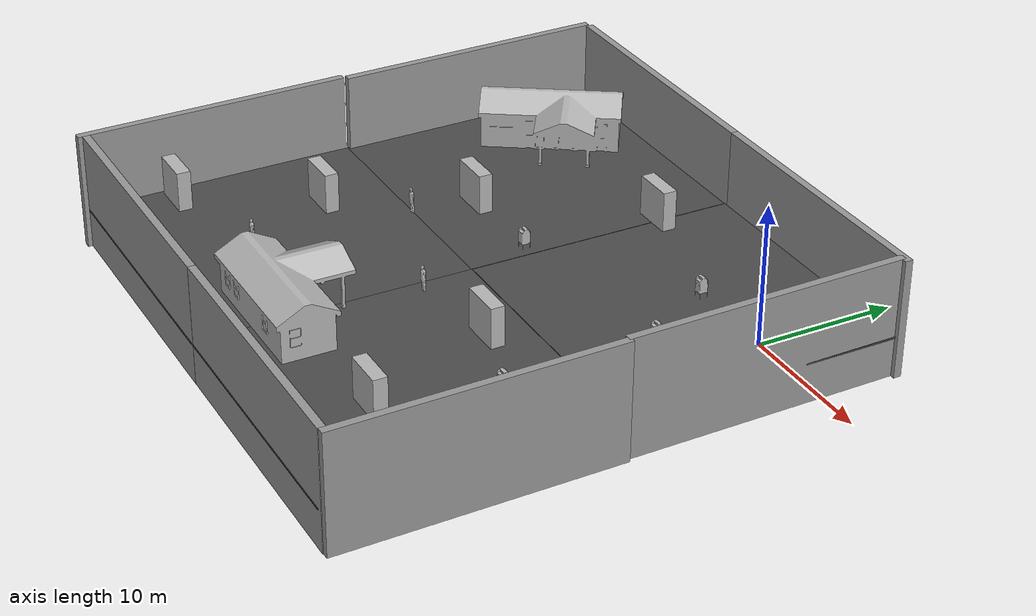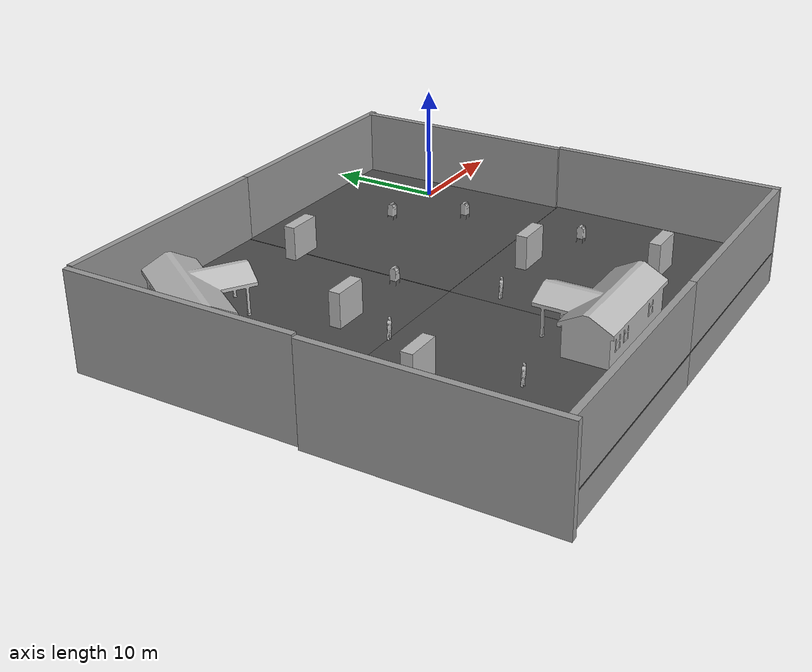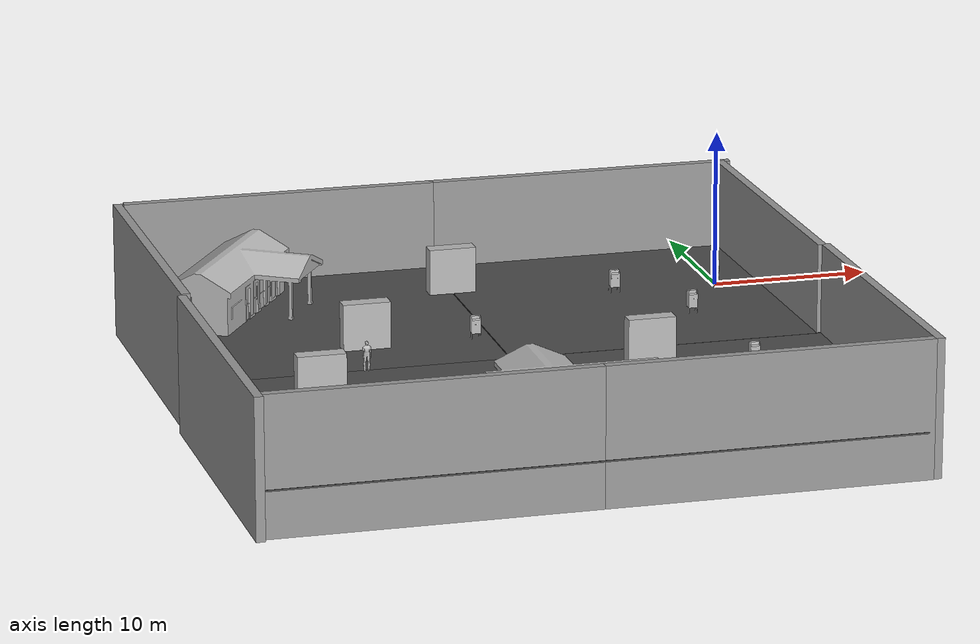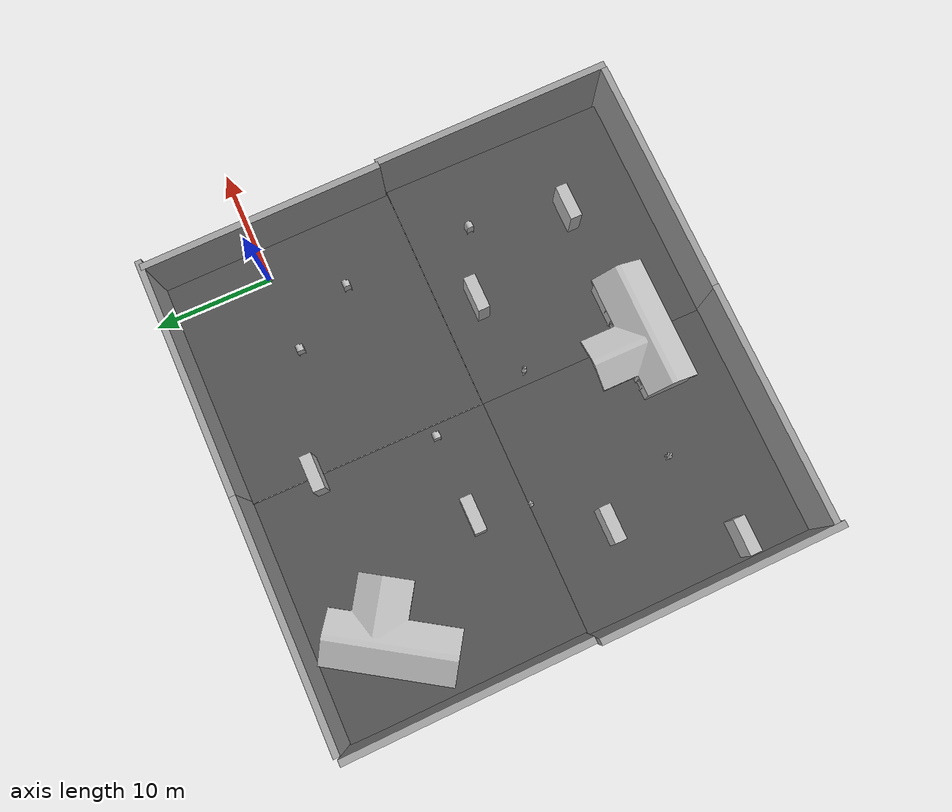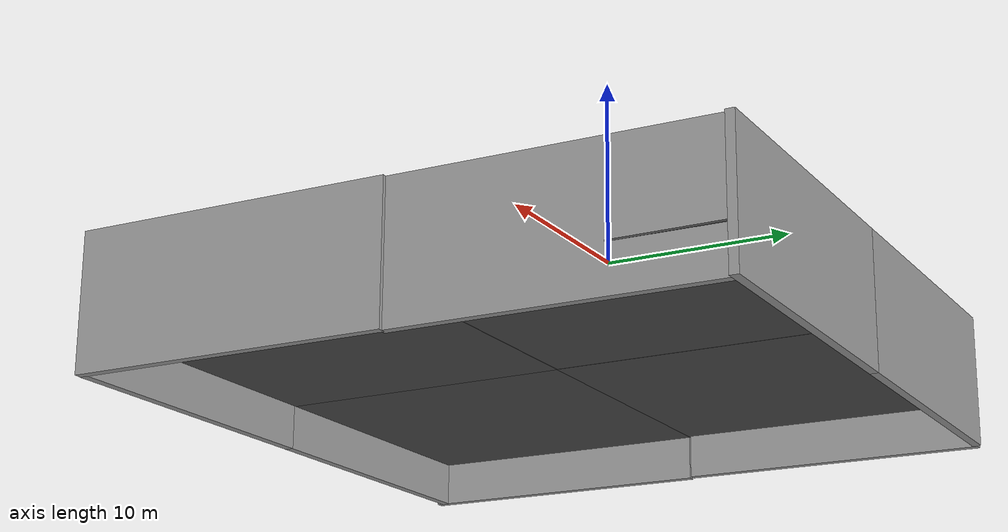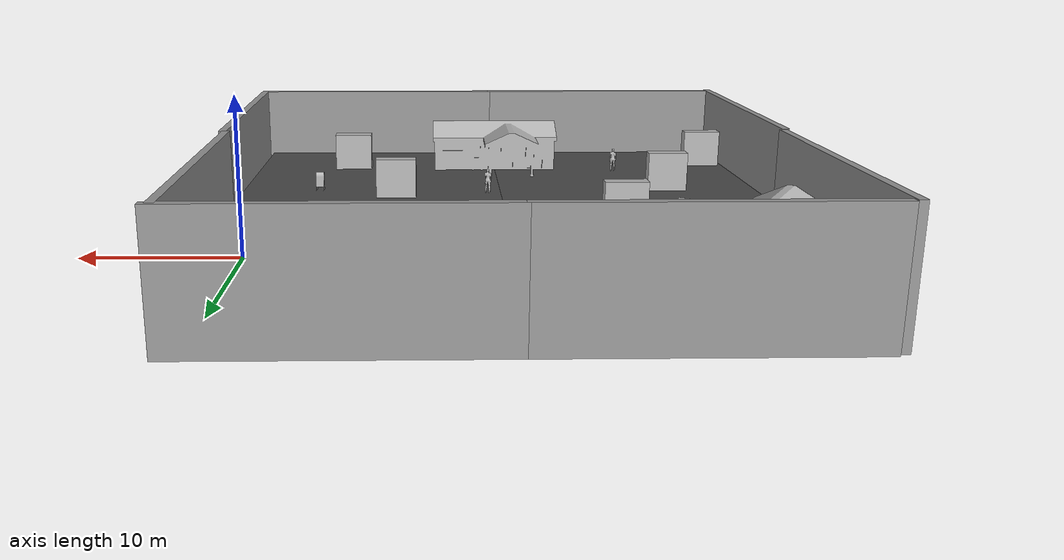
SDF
<?xml version='1.0'?>
<sdf version='1.6'>
  <model name='mw_5'>
    <link name='link'>
      <pose frame=''>0 0 0 0 -0 0</pose>
      <inertial>
        <pose frame=''>0 -0.1 0.95 0 -0 0</pose>
        <mass>80</mass>
        <inertia>
          <ixx>24.88</ixx>
          <ixy>0</ixy>
          <ixz>0</ixz>
          <iyy>25.73</iyy>
          <iyz>0</iyz>
          <izz>2.48</izz>
        </inertia>
      </inertial>
      <self_collide>0</self_collide>
      <kinematic>0</kinematic>
      <visual name='visual'>
        <pose frame=''>0 0 0.02 0.04 -0 0</pose>
        <geometry>
          <mesh>
            <uri>model://person_standing/meshes/standing.dae</uri>
          </mesh>
        </geometry>
        <cast_shadows>1</cast_shadows>
        <transparency>0</transparency>
      </visual>
      <collision name='bottom'>
        <laser_retro>0</laser_retro>
        <max_contacts>10</max_contacts>
        <pose frame=''>0 -0.1 0.01 0 -0 0</pose>
        <geometry>
          <box>
            <size>0.5 0.35 0.02</size>
          </box>
        </geometry>
        <surface>
          <friction>
            <ode>
              <mu>1</mu>
              <mu2>1</mu2>
              <fdir1>0 0 0</fdir1>
              <slip1>0</slip1>
              <slip2>0</slip2>
            </ode>
            <torsional>
              <coefficient>1</coefficient>
              <patch_radius>0</patch_radius>
              <surface_radius>0</surface_radius>
              <use_patch_radius>1</use_patch_radius>
              <ode>
                <slip>0</slip>
              </ode>
            </torsional>
          </friction>
          <bounce>
            <restitution_coefficient>0</restitution_coefficient>
            <threshold>1e+06</threshold>
          </bounce>
          <contact>
            <collide_without_contact>0</collide_without_contact>
            <collide_without_contact_bitmask>1</collide_without_contact_bitmask>
            <collide_bitmask>1</collide_bitmask>
            <ode>
              <soft_cfm>0</soft_cfm>
              <soft_erp>0.2</soft_erp>
              <kp>1e+13</kp>
              <kd>1</kd>
              <max_vel>0.01</max_vel>
              <min_depth>0</min_depth>
            </ode>
            <bullet>
              <split_impulse>1</split_impulse>
              <split_impulse_penetration_threshold>-0.01</split_impulse_penetration_threshold>
              <soft_cfm>0</soft_cfm>
              <soft_erp>0.2</soft_erp>
              <kp>1e+13</kp>
              <kd>1</kd>
            </bullet>
          </contact>
        </surface>
      </collision>
      <collision name='person'>
        <laser_retro>0</laser_retro>
        <max_contacts>10</max_contacts>
        <pose frame=''>0 0 0.02 0.04 -0 0</pose>
        <geometry>
          <mesh>
            <uri>/home/asl/.gazebo/models/person_standing/meshes/standing.dae</uri>
          </mesh>
        </geometry>
        <surface>
          <friction>
            <ode>
              <mu>1</mu>
              <mu2>1</mu2>
              <fdir1>0 0 0</fdir1>
              <slip1>0</slip1>
              <slip2>0</slip2>
            </ode>
            <torsional>
              <coefficient>1</coefficient>
              <patch_radius>0</patch_radius>
              <surface_radius>0</surface_radius>
              <use_patch_radius>1</use_patch_radius>
              <ode>
                <slip>0</slip>
              </ode>
            </torsional>
          </friction>
          <bounce>
            <restitution_coefficient>0</restitution_coefficient>
            <threshold>1e+06</threshold>
          </bounce>
          <contact>
            <collide_without_contact>0</collide_without_contact>
            <collide_without_contact_bitmask>1</collide_without_contact_bitmask>
            <collide_bitmask>1</collide_bitmask>
            <ode>
              <soft_cfm>0</soft_cfm>
              <soft_erp>0.2</soft_erp>
              <kp>1e+13</kp>
              <kd>1</kd>
              <max_vel>0.01</max_vel>
              <min_depth>0</min_depth>
            </ode>
            <bullet>
              <split_impulse>1</split_impulse>
              <split_impulse_penetration_threshold>-0.01</split_impulse_penetration_threshold>
              <soft_cfm>0</soft_cfm>
              <soft_erp>0.2</soft_erp>
              <kp>1e+13</kp>
              <kd>1</kd>
            </bullet>
          </contact>
        </surface>
      </collision>
    </link>
    <link name='link_clone'>
      <pose frame=''>-26.7598 -23.4379 4.8e-05 -1e-06 1e-06 0.000434</pose>
      <inertial>
        <pose frame=''>0 -0.1 0.95 0 -0 0</pose>
        <mass>80</mass>
        <inertia>
          <ixx>24.88</ixx>
          <ixy>0</ixy>
          <ixz>0</ixz>
          <iyy>25.73</iyy>
          <iyz>0</iyz>
          <izz>2.48</izz>
        </inertia>
      </inertial>
      <self_collide>0</self_collide>
      <kinematic>0</kinematic>
      <visual name='visual'>
        <pose frame=''>0 0 0.02 0.04 -0 0</pose>
        <geometry>
          <mesh>
            <uri>model://person_standing/meshes/standing.dae</uri>
          </mesh>
        </geometry>
        <cast_shadows>1</cast_shadows>
        <transparency>0</transparency>
        <material>
          <shader type='pixel'/>
        </material>
      </visual>
      <collision name='person'>
        <laser_retro>0</laser_retro>
        <max_contacts>10</max_contacts>
        <pose frame=''>0 0 0.02 0.04 -0 0</pose>
        <geometry>
          <mesh>
            <uri>/home/asl/.gazebo/models/person_standing/meshes/standing.dae</uri>
          </mesh>
        </geometry>
        <surface>
          <friction>
            <ode>
              <mu>1</mu>
              <mu2>1</mu2>
              <fdir1>0 0 0</fdir1>
              <slip1>0</slip1>
              <slip2>0</slip2>
            </ode>
            <torsional>
              <coefficient>1</coefficient>
              <patch_radius>0</patch_radius>
              <surface_radius>0</surface_radius>
              <use_patch_radius>1</use_patch_radius>
              <ode>
                <slip>0</slip>
              </ode>
            </torsional>
          </friction>
          <bounce>
            <restitution_coefficient>0</restitution_coefficient>
            <threshold>1e+06</threshold>
          </bounce>
          <contact>
            <collide_without_contact>0</collide_without_contact>
            <collide_without_contact_bitmask>1</collide_without_contact_bitmask>
            <collide_bitmask>1</collide_bitmask>
            <ode>
              <soft_cfm>0</soft_cfm>
              <soft_erp>0.2</soft_erp>
              <kp>1e+13</kp>
              <kd>1</kd>
              <max_vel>0.01</max_vel>
              <min_depth>0</min_depth>
            </ode>
            <bullet>
              <split_impulse>1</split_impulse>
              <split_impulse_penetration_threshold>-0.01</split_impulse_penetration_threshold>
              <soft_cfm>0</soft_cfm>
              <soft_erp>0.2</soft_erp>
              <kp>1e+13</kp>
              <kd>1</kd>
            </bullet>
          </contact>
        </surface>
      </collision>
      <collision name='bottom'>
        <laser_retro>0</laser_retro>
        <max_contacts>10</max_contacts>
        <pose frame=''>0 -0.1 0.01 0 -0 0</pose>
        <geometry>
          <box>
            <size>0.5 0.35 0.02</size>
          </box>
        </geometry>
        <surface>
          <friction>
            <ode>
              <mu>1</mu>
              <mu2>1</mu2>
              <fdir1>0 0 0</fdir1>
              <slip1>0</slip1>
              <slip2>0</slip2>
            </ode>
            <torsional>
              <coefficient>1</coefficient>
              <patch_radius>0</patch_radius>
              <surface_radius>0</surface_radius>
              <use_patch_radius>1</use_patch_radius>
              <ode>
                <slip>0</slip>
              </ode>
            </torsional>
          </friction>
          <bounce>
            <restitution_coefficient>0</restitution_coefficient>
            <threshold>1e+06</threshold>
          </bounce>
          <contact>
            <collide_without_contact>0</collide_without_contact>
            <collide_without_contact_bitmask>1</collide_without_contact_bitmask>
            <collide_bitmask>1</collide_bitmask>
            <ode>
              <soft_cfm>0</soft_cfm>
              <soft_erp>0.2</soft_erp>
              <kp>1e+13</kp>
              <kd>1</kd>
              <max_vel>0.01</max_vel>
              <min_depth>0</min_depth>
            </ode>
            <bullet>
              <split_impulse>1</split_impulse>
              <split_impulse_penetration_threshold>-0.01</split_impulse_penetration_threshold>
              <soft_cfm>0</soft_cfm>
              <soft_erp>0.2</soft_erp>
              <kp>1e+13</kp>
              <kd>1</kd>
            </bullet>
          </contact>
        </surface>
      </collision>
    </link>
    <link name='link_clone_0'>
      <pose frame=''>-15.7631 -15.8646 2.9e-05 -1e-06 1e-06 0.000434</pose>
      <inertial>
        <pose frame=''>0 -0.1 0.95 0 -0 0</pose>
        <mass>80</mass>
        <inertia>
          <ixx>24.88</ixx>
          <ixy>0</ixy>
          <ixz>0</ixz>
          <iyy>25.73</iyy>
          <iyz>0</iyz>
          <izz>2.48</izz>
        </inertia>
      </inertial>
      <self_collide>0</self_collide>
      <kinematic>0</kinematic>
      <visual name='visual'>
        <pose frame=''>0 0 0.02 0.04 -0 0</pose>
        <geometry>
          <mesh>
            <uri>model://person_standing/meshes/standing.dae</uri>
          </mesh>
        </geometry>
        <cast_shadows>1</cast_shadows>
        <transparency>0</transparency>
        <material>
          <shader type='pixel'/>
        </material>
      </visual>
      <collision name='person'>
        <laser_retro>0</laser_retro>
        <max_contacts>10</max_contacts>
        <pose frame=''>0 0 0.02 0.04 -0 0</pose>
        <geometry>
          <mesh>
            <uri>/home/asl/.gazebo/models/person_standing/meshes/standing.dae</uri>
          </mesh>
        </geometry>
        <surface>
          <friction>
            <ode>
              <mu>1</mu>
              <mu2>1</mu2>
              <fdir1>0 0 0</fdir1>
              <slip1>0</slip1>
              <slip2>0</slip2>
            </ode>
            <torsional>
              <coefficient>1</coefficient>
              <patch_radius>0</patch_radius>
              <surface_radius>0</surface_radius>
              <use_patch_radius>1</use_patch_radius>
              <ode>
                <slip>0</slip>
              </ode>
            </torsional>
          </friction>
          <bounce>
            <restitution_coefficient>0</restitution_coefficient>
            <threshold>1e+06</threshold>
          </bounce>
          <contact>
            <collide_without_contact>0</collide_without_contact>
            <collide_without_contact_bitmask>1</collide_without_contact_bitmask>
            <collide_bitmask>1</collide_bitmask>
            <ode>
              <soft_cfm>0</soft_cfm>
              <soft_erp>0.2</soft_erp>
              <kp>1e+13</kp>
              <kd>1</kd>
              <max_vel>0.01</max_vel>
              <min_depth>0</min_depth>
            </ode>
            <bullet>
              <split_impulse>1</split_impulse>
              <split_impulse_penetration_threshold>-0.01</split_impulse_penetration_threshold>
              <soft_cfm>0</soft_cfm>
              <soft_erp>0.2</soft_erp>
              <kp>1e+13</kp>
              <kd>1</kd>
            </bullet>
          </contact>
        </surface>
      </collision>
      <collision name='bottom'>
        <laser_retro>0</laser_retro>
        <max_contacts>10</max_contacts>
        <pose frame=''>0 -0.1 0.01 0 -0 0</pose>
        <geometry>
          <box>
            <size>0.5 0.35 0.02</size>
          </box>
        </geometry>
        <surface>
          <friction>
            <ode>
              <mu>1</mu>
              <mu2>1</mu2>
              <fdir1>0 0 0</fdir1>
              <slip1>0</slip1>
              <slip2>0</slip2>
            </ode>
            <torsional>
              <coefficient>1</coefficient>
              <patch_radius>0</patch_radius>
              <surface_radius>0</surface_radius>
              <use_patch_radius>1</use_patch_radius>
              <ode>
                <slip>0</slip>
              </ode>
            </torsional>
          </friction>
          <bounce>
            <restitution_coefficient>0</restitution_coefficient>
            <threshold>1e+06</threshold>
          </bounce>
          <contact>
            <collide_without_contact>0</collide_without_contact>
            <collide_without_contact_bitmask>1</collide_without_contact_bitmask>
            <collide_bitmask>1</collide_bitmask>
            <ode>
              <soft_cfm>0</soft_cfm>
              <soft_erp>0.2</soft_erp>
              <kp>1e+13</kp>
              <kd>1</kd>
              <max_vel>0.01</max_vel>
              <min_depth>0</min_depth>
            </ode>
            <bullet>
              <split_impulse>1</split_impulse>
              <split_impulse_penetration_threshold>-0.01</split_impulse_penetration_threshold>
              <soft_cfm>0</soft_cfm>
              <soft_erp>0.2</soft_erp>
              <kp>1e+13</kp>
              <kd>1</kd>
            </bullet>
          </contact>
        </surface>
      </collision>
    </link>
    <link name='link_clone_1'>
      <pose frame=''>-25.7648 -11.869 4e-05 -1e-06 1e-06 0.000434</pose>
      <inertial>
        <pose frame=''>0 -0.1 0.95 0 -0 0</pose>
        <mass>80</mass>
        <inertia>
          <ixx>24.88</ixx>
          <ixy>0</ixy>
          <ixz>0</ixz>
          <iyy>25.73</iyy>
          <iyz>0</iyz>
          <izz>2.48</izz>
        </inertia>
      </inertial>
      <self_collide>0</self_collide>
      <kinematic>0</kinematic>
      <visual name='visual'>
        <pose frame=''>0 0 0.02 0.04 -0 0</pose>
        <geometry>
          <mesh>
            <uri>model://person_standing/meshes/standing.dae</uri>
          </mesh>
        </geometry>
        <cast_shadows>1</cast_shadows>
        <transparency>0</transparency>
        <material>
          <shader type='pixel'/>
        </material>
      </visual>
      <collision name='person'>
        <laser_retro>0</laser_retro>
        <max_contacts>10</max_contacts>
        <pose frame=''>0 0 0.02 0.04 -0 0</pose>
        <geometry>
          <mesh>
            <uri>/home/asl/.gazebo/models/person_standing/meshes/standing.dae</uri>
          </mesh>
        </geometry>
        <surface>
          <friction>
            <ode>
              <mu>1</mu>
              <mu2>1</mu2>
              <fdir1>0 0 0</fdir1>
              <slip1>0</slip1>
              <slip2>0</slip2>
            </ode>
            <torsional>
              <coefficient>1</coefficient>
              <patch_radius>0</patch_radius>
              <surface_radius>0</surface_radius>
              <use_patch_radius>1</use_patch_radius>
              <ode>
                <slip>0</slip>
              </ode>
            </torsional>
          </friction>
          <bounce>
            <restitution_coefficient>0</restitution_coefficient>
            <threshold>1e+06</threshold>
          </bounce>
          <contact>
            <collide_without_contact>0</collide_without_contact>
            <collide_without_contact_bitmask>1</collide_without_contact_bitmask>
            <collide_bitmask>1</collide_bitmask>
            <ode>
              <soft_cfm>0</soft_cfm>
              <soft_erp>0.2</soft_erp>
              <kp>1e+13</kp>
              <kd>1</kd>
              <max_vel>0.01</max_vel>
              <min_depth>0</min_depth>
            </ode>
            <bullet>
              <split_impulse>1</split_impulse>
              <split_impulse_penetration_threshold>-0.01</split_impulse_penetration_threshold>
              <soft_cfm>0</soft_cfm>
              <soft_erp>0.2</soft_erp>
              <kp>1e+13</kp>
              <kd>1</kd>
            </bullet>
          </contact>
        </surface>
      </collision>
      <collision name='bottom'>
        <laser_retro>0</laser_retro>
        <max_contacts>10</max_contacts>
        <pose frame=''>0 -0.1 0.01 0 -0 0</pose>
        <geometry>
          <box>
            <size>0.5 0.35 0.02</size>
          </box>
        </geometry>
        <surface>
          <friction>
            <ode>
              <mu>1</mu>
              <mu2>1</mu2>
              <fdir1>0 0 0</fdir1>
              <slip1>0</slip1>
              <slip2>0</slip2>
            </ode>
            <torsional>
              <coefficient>1</coefficient>
              <patch_radius>0</patch_radius>
              <surface_radius>0</surface_radius>
              <use_patch_radius>1</use_patch_radius>
              <ode>
                <slip>0</slip>
              </ode>
            </torsional>
          </friction>
          <bounce>
            <restitution_coefficient>0</restitution_coefficient>
            <threshold>1e+06</threshold>
          </bounce>
          <contact>
            <collide_without_contact>0</collide_without_contact>
            <collide_without_contact_bitmask>1</collide_without_contact_bitmask>
            <collide_bitmask>1</collide_bitmask>
            <ode>
              <soft_cfm>0</soft_cfm>
              <soft_erp>0.2</soft_erp>
              <kp>1e+13</kp>
              <kd>1</kd>
              <max_vel>0.01</max_vel>
              <min_depth>0</min_depth>
            </ode>
            <bullet>
              <split_impulse>1</split_impulse>
              <split_impulse_penetration_threshold>-0.01</split_impulse_penetration_threshold>
              <soft_cfm>0</soft_cfm>
              <soft_erp>0.2</soft_erp>
              <kp>1e+13</kp>
              <kd>1</kd>
            </bullet>
          </contact>
        </surface>
      </collision>
    </link>
    <model name='asphalt_plane'>
      <static>1</static>
      <link name='link'>
        <collision name='collision'>
          <geometry>
            <box>
              <size>20 20 0.1</size>
            </box>
          </geometry>
          <max_contacts>10</max_contacts>
          <surface>
            <contact>
              <ode/>
            </contact>
            <bounce/>
            <friction>
              <torsional>
                <ode/>
              </torsional>
              <ode/>
            </friction>
          </surface>
        </collision>
        <visual name='visual'>
          <cast_shadows>0</cast_shadows>
          <geometry>
            <box>
              <size>20 20 0.1</size>
            </box>
          </geometry>
          <material>
            <script>
              <uri>model://asphalt_plane/materials/scripts</uri>
              <uri>model://asphalt_plane/materials/textures</uri>
              <name>vrc/asphalt</name>
            </script>
          </material>
        </visual>
        <self_collide>0</self_collide>
        <kinematic>0</kinematic>
        <gravity>1</gravity>
      </link>
      <pose frame=''>-6.71407 -1.82606 1e-05 0 -0 0</pose>
    </model>
    <model name='asphalt_plane_0'>
      <static>1</static>
      <link name='link'>
        <collision name='collision'>
          <geometry>
            <box>
              <size>20 20 0.1</size>
            </box>
          </geometry>
          <max_contacts>10</max_contacts>
          <surface>
            <contact>
              <ode/>
            </contact>
            <bounce/>
            <friction>
              <torsional>
                <ode/>
              </torsional>
              <ode/>
            </friction>
          </surface>
        </collision>
        <visual name='visual'>
          <cast_shadows>0</cast_shadows>
          <geometry>
            <box>
              <size>20 20 0.1</size>
            </box>
          </geometry>
          <material>
            <script>
              <uri>model://asphalt_plane/materials/scripts</uri>
              <uri>model://asphalt_plane/materials/textures</uri>
              <name>vrc/asphalt</name>
            </script>
          </material>
        </visual>
        <self_collide>0</self_collide>
        <kinematic>0</kinematic>
        <gravity>1</gravity>
      </link>
      <pose frame=''>-6.82262 -21.8542 2.1e-05 0 -0 0</pose>
    </model>
    <model name='asphalt_plane_1'>
      <static>1</static>
      <link name='link'>
        <collision name='collision'>
          <geometry>
            <box>
              <size>20 20 0.1</size>
            </box>
          </geometry>
          <max_contacts>10</max_contacts>
          <surface>
            <contact>
              <ode/>
            </contact>
            <bounce/>
            <friction>
              <torsional>
                <ode/>
              </torsional>
              <ode/>
            </friction>
          </surface>
        </collision>
        <visual name='visual'>
          <cast_shadows>0</cast_shadows>
          <geometry>
            <box>
              <size>20 20 0.1</size>
            </box>
          </geometry>
          <material>
            <script>
              <uri>model://asphalt_plane/materials/scripts</uri>
              <uri>model://asphalt_plane/materials/textures</uri>
              <name>vrc/asphalt</name>
            </script>
          </material>
        </visual>
        <self_collide>0</self_collide>
        <kinematic>0</kinematic>
        <gravity>1</gravity>
      </link>
      <pose frame=''>-26.7692 -1.8694 3.6e-05 0 -0 0</pose>
    </model>
    <model name='asphalt_plane_2'>
      <static>1</static>
      <link name='link'>
        <collision name='collision'>
          <geometry>
            <box>
              <size>20 20 0.1</size>
            </box>
          </geometry>
          <max_contacts>10</max_contacts>
          <surface>
            <contact>
              <ode/>
            </contact>
            <bounce/>
            <friction>
              <torsional>
                <ode/>
              </torsional>
              <ode/>
            </friction>
          </surface>
        </collision>
        <visual name='visual'>
          <cast_shadows>0</cast_shadows>
          <geometry>
            <box>
              <size>20 20 0.1</size>
            </box>
          </geometry>
          <material>
            <script>
              <uri>model://asphalt_plane/materials/scripts</uri>
              <uri>model://asphalt_plane/materials/textures</uri>
              <name>vrc/asphalt</name>
            </script>
          </material>
        </visual>
        <self_collide>0</self_collide>
        <kinematic>0</kinematic>
        <gravity>1</gravity>
      </link>
      <pose frame=''>-26.7605 -21.8694 4.7e-05 0 -0 0</pose>
    </model>
    <model name='brick_box_3x1x3'>
      <static>1</static>
      <link name='chassis'>
        <pose frame=''>0 0 1.5 0 -0 0</pose>
        <collision name='collision'>
          <geometry>
            <box>
              <size>3 1 3</size>
            </box>
          </geometry>
          <max_contacts>10</max_contacts>
          <surface>
            <contact>
              <ode/>
            </contact>
            <bounce/>
            <friction>
              <torsional>
                <ode/>
              </torsional>
              <ode/>
            </friction>
          </surface>
        </collision>
        <visual name='visual'>
          <geometry>
            <mesh>
              <uri>model://brick_box_3x1x3/meshes/simple_box.dae</uri>
              <scale>3 1 3</scale>
            </mesh>
          </geometry>
          <material>
            <script>
              <uri>model://brick_box_3x1x3/materials/scripts</uri>
              <uri>model://brick_box_3x1x3/materials/textures</uri>
              <name>BrickBox/Diffuse</name>
            </script>
          </material>
        </visual>
        <self_collide>0</self_collide>
        <kinematic>0</kinematic>
        <gravity>1</gravity>
      </link>
      <pose frame=''>-16.7712 2.65121 2e-05 0 -0 0</pose>
    </model>
    <model name='brick_box_3x1x3_0'>
      <static>1</static>
      <link name='chassis'>
        <pose frame=''>0 0 1.5 0 -0 0</pose>
        <collision name='collision'>
          <geometry>
            <box>
              <size>3 1 3</size>
            </box>
          </geometry>
          <max_contacts>10</max_contacts>
          <surface>
            <contact>
              <ode/>
            </contact>
            <bounce/>
            <friction>
              <torsional>
                <ode/>
              </torsional>
              <ode/>
            </friction>
          </surface>
        </collision>
        <visual name='visual'>
          <geometry>
            <mesh>
              <uri>model://brick_box_3x1x3/meshes/simple_box.dae</uri>
              <scale>3 1 3</scale>
            </mesh>
          </geometry>
          <material>
            <script>
              <uri>model://brick_box_3x1x3/materials/scripts</uri>
              <uri>model://brick_box_3x1x3/materials/textures</uri>
              <name>BrickBox/Diffuse</name>
            </script>
          </material>
        </visual>
        <self_collide>0</self_collide>
        <kinematic>0</kinematic>
        <gravity>1</gravity>
      </link>
      <pose frame=''>-4.7592 -24.8598 2e-05 0 -0 0</pose>
    </model>
    <model name='brick_box_3x1x3_clone'>
      <static>1</static>
      <link name='chassis'>
        <pose frame=''>0 0 1.5 0 -0 0</pose>
        <collision name='collision'>
          <geometry>
            <box>
              <size>3 1 3</size>
            </box>
          </geometry>
          <max_contacts>10</max_contacts>
          <surface>
            <contact>
              <ode/>
            </contact>
            <bounce/>
            <friction>
              <torsional>
                <ode/>
              </torsional>
              <ode/>
            </friction>
          </surface>
        </collision>
        <visual name='visual'>
          <geometry>
            <mesh>
              <uri>model://brick_box_3x1x3/meshes/simple_box.dae</uri>
              <scale>3 1 3</scale>
            </mesh>
          </geometry>
          <material>
            <script>
              <uri>model://brick_box_3x1x3/materials/scripts</uri>
              <uri>model://brick_box_3x1x3/materials/textures</uri>
              <name>BrickBox/Diffuse</name>
            </script>
          </material>
        </visual>
        <self_collide>0</self_collide>
        <kinematic>0</kinematic>
        <gravity>1</gravity>
      </link>
      <pose frame=''>-29.7627 -16.8707 6.8e-05 -1e-06 1e-06 0.000434</pose>
    </model>
    <model name='brick_box_3x1x3_clone_clone'>
      <static>1</static>
      <link name='chassis'>
        <pose frame=''>0 0 1.5 0 -0 0</pose>
        <collision name='collision'>
          <geometry>
            <box>
              <size>3 1 3</size>
            </box>
          </geometry>
          <max_contacts>10</max_contacts>
          <surface>
            <contact>
              <ode/>
            </contact>
            <bounce/>
            <friction>
              <torsional>
                <ode/>
              </torsional>
              <ode/>
            </friction>
          </surface>
        </collision>
        <visual name='visual'>
          <geometry>
            <mesh>
              <uri>model://brick_box_3x1x3/meshes/simple_box.dae</uri>
              <scale>3 1 3</scale>
            </mesh>
          </geometry>
          <material>
            <script>
              <uri>model://brick_box_3x1x3/materials/scripts</uri>
              <uri>model://brick_box_3x1x3/materials/textures</uri>
              <name>BrickBox/Diffuse</name>
            </script>
          </material>
        </visual>
        <self_collide>0</self_collide>
        <kinematic>0</kinematic>
        <gravity>1</gravity>
      </link>
      <pose frame=''>-8.76355 -14.8616 8.8e-05 -2e-06 2e-06 0.000868</pose>
    </model>
    <model name='brick_box_3x1x3_clone_clone_0'>
      <static>1</static>
      <link name='chassis'>
        <pose frame=''>0 0 1.5 0 -0 0</pose>
        <collision name='collision'>
          <geometry>
            <box>
              <size>3 1 3</size>
            </box>
          </geometry>
          <max_contacts>10</max_contacts>
          <surface>
            <contact>
              <ode/>
            </contact>
            <bounce/>
            <friction>
              <torsional>
                <ode/>
              </torsional>
              <ode/>
            </friction>
          </surface>
        </collision>
        <visual name='visual'>
          <geometry>
            <mesh>
              <uri>model://brick_box_3x1x3/meshes/simple_box.dae</uri>
              <scale>3 1 3</scale>
            </mesh>
          </geometry>
          <material>
            <script>
              <uri>model://brick_box_3x1x3/materials/scripts</uri>
              <uri>model://brick_box_3x1x3/materials/textures</uri>
              <name>BrickBox/Diffuse</name>
            </script>
          </material>
        </visual>
        <self_collide>0</self_collide>
        <kinematic>0</kinematic>
        <gravity>1</gravity>
      </link>
      <pose frame=''>-34.7588 -25.8729 0.000128 -2e-06 2e-06 0.000868</pose>
    </model>
    <model name='brick_box_3x1x3_clone_clone_1'>
      <static>1</static>
      <link name='chassis'>
        <pose frame=''>0 0 1.5 0 -0 0</pose>
        <collision name='collision'>
          <geometry>
            <box>
              <size>3 1 3</size>
            </box>
          </geometry>
          <max_contacts>10</max_contacts>
          <surface>
            <contact>
              <ode/>
            </contact>
            <bounce/>
            <friction>
              <torsional>
                <ode/>
              </torsional>
              <ode/>
            </friction>
          </surface>
        </collision>
        <visual name='visual'>
          <geometry>
            <mesh>
              <uri>model://brick_box_3x1x3/meshes/simple_box.dae</uri>
              <scale>3 1 3</scale>
            </mesh>
          </geometry>
          <material>
            <script>
              <uri>model://brick_box_3x1x3/materials/scripts</uri>
              <uri>model://brick_box_3x1x3/materials/textures</uri>
              <name>BrickBox/Diffuse</name>
            </script>
          </material>
        </visual>
        <self_collide>0</self_collide>
        <kinematic>0</kinematic>
        <gravity>1</gravity>
      </link>
      <pose frame=''>-24.7668 -7.42377 0.000104 -2e-06 2e-06 0.000868</pose>
    </model>
    <model name='grey_wall_mw'>
      <link name='link'>
        <pose frame=''>-8.81665 -2.69351 1.4 0 -0 0</pose>
        <inertial>
          <inertia>
            <ixx>nan</ixx>
            <ixy>0</ixy>
            <ixz>0</ixz>
            <iyy>nan</iyy>
            <iyz>0</iyz>
            <izz>nan</izz>
          </inertia>
          <mass>0</mass>
          <pose frame=''>0 0 0 0 -0 0</pose>
        </inertial>
        <self_collide>0</self_collide>
        <kinematic>0</kinematic>
        <visual name='visual'>
          <cast_shadows>0</cast_shadows>
          <geometry>
            <box>
              <size>20.2056 0.556506 8.63552</size>
            </box>
          </geometry>
          <material>
            <script>
              <uri>model://grey_wall/materials/scripts</uri>
              <uri>model://grey_wall/materials/textures</uri>
              <name>vrc/grey_wall</name>
            </script>
            <ambient>1 1 1 1</ambient>
            <diffuse>1 1 1 1</diffuse>
            <specular>0 0 0 1</specular>
            <emissive>0 0 0 1</emissive>
          </material>
          <pose frame=''>0 0 0 0 -0 0</pose>
          <transparency>0</transparency>
        </visual>
        <collision name='collision'>
          <laser_retro>0</laser_retro>
          <max_contacts>10</max_contacts>
          <pose frame=''>0 0 0 0 -0 0</pose>
          <geometry>
            <box>
              <size>20.2056 0.556506 8.63552</size>
            </box>
          </geometry>
          <surface>
            <friction>
              <ode>
                <mu>1</mu>
                <mu2>1</mu2>
                <fdir1>0 0 0</fdir1>
                <slip1>0</slip1>
                <slip2>0</slip2>
              </ode>
              <torsional>
                <coefficient>1</coefficient>
                <patch_radius>0</patch_radius>
                <surface_radius>0</surface_radius>
                <use_patch_radius>1</use_patch_radius>
                <ode>
                  <slip>0</slip>
                </ode>
              </torsional>
            </friction>
            <bounce>
              <restitution_coefficient>0</restitution_coefficient>
              <threshold>1e+06</threshold>
            </bounce>
            <contact>
              <collide_without_contact>0</collide_without_contact>
              <collide_without_contact_bitmask>1</collide_without_contact_bitmask>
              <collide_bitmask>1</collide_bitmask>
              <ode>
                <soft_cfm>0</soft_cfm>
                <soft_erp>0.2</soft_erp>
                <kp>1e+13</kp>
                <kd>1</kd>
                <max_vel>0.01</max_vel>
                <min_depth>0</min_depth>
              </ode>
              <bullet>
                <split_impulse>1</split_impulse>
                <split_impulse_penetration_threshold>-0.01</split_impulse_penetration_threshold>
                <soft_cfm>0</soft_cfm>
                <soft_erp>0.2</soft_erp>
                <kp>1e+13</kp>
                <kd>1</kd>
              </bullet>
            </contact>
          </surface>
        </collision>
        <gravity>1</gravity>
      </link>
      <static>1</static>
      <allow_auto_disable>1</allow_auto_disable>
      <pose frame=''>2.24253 -28.8568 1.3e-05 0 -0 0</pose>
    </model>
    <model name='grey_wall_mw_clone'>
      <link name='link'>
        <pose frame=''>-8.81665 -2.69351 1.4 0 -0 0</pose>
        <inertial>
          <inertia>
            <ixx>nan</ixx>
            <ixy>0</ixy>
            <ixz>0</ixz>
            <iyy>nan</iyy>
            <iyz>0</iyz>
            <izz>nan</izz>
          </inertia>
          <mass>0</mass>
          <pose frame=''>0 0 0 0 -0 0</pose>
        </inertial>
        <self_collide>0</self_collide>
        <kinematic>0</kinematic>
        <visual name='visual'>
          <cast_shadows>0</cast_shadows>
          <geometry>
            <box>
              <size>20.2056 0.556506 8.63552</size>
            </box>
          </geometry>
          <material>
            <script>
              <uri>model://grey_wall/materials/scripts</uri>
              <uri>model://grey_wall/materials/textures</uri>
              <name>vrc/grey_wall</name>
            </script>
            <ambient>1 1 1 1</ambient>
            <diffuse>1 1 1 1</diffuse>
            <specular>0 0 0 1</specular>
            <emissive>0 0 0 1</emissive>
          </material>
          <pose frame=''>0 0 0 0 -0 0</pose>
          <transparency>0</transparency>
        </visual>
        <collision name='collision'>
          <laser_retro>0</laser_retro>
          <max_contacts>10</max_contacts>
          <pose frame=''>0 0 0 0 -0 0</pose>
          <geometry>
            <box>
              <size>20.2056 0.556506 8.63552</size>
            </box>
          </geometry>
          <surface>
            <friction>
              <ode>
                <mu>1</mu>
                <mu2>1</mu2>
                <fdir1>0 0 0</fdir1>
                <slip1>0</slip1>
                <slip2>0</slip2>
              </ode>
              <torsional>
                <coefficient>1</coefficient>
                <patch_radius>0</patch_radius>
                <surface_radius>0</surface_radius>
                <use_patch_radius>1</use_patch_radius>
                <ode>
                  <slip>0</slip>
                </ode>
              </torsional>
            </friction>
            <bounce>
              <restitution_coefficient>0</restitution_coefficient>
              <threshold>1e+06</threshold>
            </bounce>
            <contact>
              <collide_without_contact>0</collide_without_contact>
              <collide_without_contact_bitmask>1</collide_without_contact_bitmask>
              <collide_bitmask>1</collide_bitmask>
              <ode>
                <soft_cfm>0</soft_cfm>
                <soft_erp>0.2</soft_erp>
                <kp>1e+13</kp>
                <kd>1</kd>
                <max_vel>0.01</max_vel>
                <min_depth>0</min_depth>
              </ode>
              <bullet>
                <split_impulse>1</split_impulse>
                <split_impulse_penetration_threshold>-0.01</split_impulse_penetration_threshold>
                <soft_cfm>0</soft_cfm>
                <soft_erp>0.2</soft_erp>
                <kp>1e+13</kp>
                <kd>1</kd>
              </bullet>
            </contact>
          </surface>
        </collision>
        <gravity>1</gravity>
      </link>
      <static>1</static>
      <allow_auto_disable>1</allow_auto_disable>
      <pose frame=''>-17.7575 -28.8655 5.2e-05 -1e-06 1e-06 0.000434</pose>
    </model>
    <model name='grey_wall_mw_clone_1'>
      <link name='link'>
        <pose frame=''>-8.81665 -2.69351 1.4 0 -0 0</pose>
        <inertial>
          <inertia>
            <ixx>nan</ixx>
            <ixy>0</ixy>
            <ixz>0</ixz>
            <iyy>nan</iyy>
            <iyz>0</iyz>
            <izz>nan</izz>
          </inertia>
          <mass>0</mass>
          <pose frame=''>0 0 0 0 -0 0</pose>
        </inertial>
        <self_collide>0</self_collide>
        <kinematic>0</kinematic>
        <visual name='visual'>
          <cast_shadows>0</cast_shadows>
          <geometry>
            <box>
              <size>20.2056 0.556506 8.63552</size>
            </box>
          </geometry>
          <material>
            <script>
              <uri>model://grey_wall/materials/scripts</uri>
              <uri>model://grey_wall/materials/textures</uri>
              <name>vrc/grey_wall</name>
            </script>
            <ambient>1 1 1 1</ambient>
            <diffuse>1 1 1 1</diffuse>
            <specular>0 0 0 1</specular>
            <emissive>0 0 0 1</emissive>
          </material>
          <pose frame=''>0 0 0 0 -0 0</pose>
          <transparency>0</transparency>
        </visual>
        <collision name='collision'>
          <laser_retro>0</laser_retro>
          <max_contacts>10</max_contacts>
          <pose frame=''>0 0 0 0 -0 0</pose>
          <geometry>
            <box>
              <size>20.2056 0.556506 8.63552</size>
            </box>
          </geometry>
          <surface>
            <friction>
              <ode>
                <mu>1</mu>
                <mu2>1</mu2>
                <fdir1>0 0 0</fdir1>
                <slip1>0</slip1>
                <slip2>0</slip2>
              </ode>
              <torsional>
                <coefficient>1</coefficient>
                <patch_radius>0</patch_radius>
                <surface_radius>0</surface_radius>
                <use_patch_radius>1</use_patch_radius>
                <ode>
                  <slip>0</slip>
                </ode>
              </torsional>
            </friction>
            <bounce>
              <restitution_coefficient>0</restitution_coefficient>
              <threshold>1e+06</threshold>
            </bounce>
            <contact>
              <collide_without_contact>0</collide_without_contact>
              <collide_without_contact_bitmask>1</collide_without_contact_bitmask>
              <collide_bitmask>1</collide_bitmask>
              <ode>
                <soft_cfm>0</soft_cfm>
                <soft_erp>0.2</soft_erp>
                <kp>1e+13</kp>
                <kd>1</kd>
                <max_vel>0.01</max_vel>
                <min_depth>0</min_depth>
              </ode>
              <bullet>
                <split_impulse>1</split_impulse>
                <split_impulse_penetration_threshold>-0.01</split_impulse_penetration_threshold>
                <soft_cfm>0</soft_cfm>
                <soft_erp>0.2</soft_erp>
                <kp>1e+13</kp>
                <kd>1</kd>
              </bullet>
            </contact>
          </surface>
        </collision>
        <gravity>1</gravity>
      </link>
      <static>1</static>
      <allow_auto_disable>1</allow_auto_disable>
      <pose frame=''>-17.7748 11.1345 3e-05 -1e-06 1e-06 0.000434</pose>
    </model>
    <model name='grey_wall_mw_clone_2'>
      <link name='link'>
        <pose frame=''>-8.81665 -2.69351 1.4 0 -0 0</pose>
        <inertial>
          <inertia>
            <ixx>nan</ixx>
            <ixy>0</ixy>
            <ixz>0</ixz>
            <iyy>nan</iyy>
            <iyz>0</iyz>
            <izz>nan</izz>
          </inertia>
          <mass>0</mass>
          <pose frame=''>0 0 0 0 -0 0</pose>
        </inertial>
        <self_collide>0</self_collide>
        <kinematic>0</kinematic>
        <visual name='visual'>
          <cast_shadows>0</cast_shadows>
          <geometry>
            <box>
              <size>20.2056 0.556506 8.63552</size>
            </box>
          </geometry>
          <material>
            <script>
              <uri>model://grey_wall/materials/scripts</uri>
              <uri>model://grey_wall/materials/textures</uri>
              <name>vrc/grey_wall</name>
            </script>
            <ambient>1 1 1 1</ambient>
            <diffuse>1 1 1 1</diffuse>
            <specular>0 0 0 1</specular>
            <emissive>0 0 0 1</emissive>
          </material>
          <pose frame=''>0 0 0 0 -0 0</pose>
          <transparency>0</transparency>
        </visual>
        <collision name='collision'>
          <laser_retro>0</laser_retro>
          <max_contacts>10</max_contacts>
          <pose frame=''>0 0 0 0 -0 0</pose>
          <geometry>
            <box>
              <size>20.2056 0.556506 8.63552</size>
            </box>
          </geometry>
          <surface>
            <friction>
              <ode>
                <mu>1</mu>
                <mu2>1</mu2>
                <fdir1>0 0 0</fdir1>
                <slip1>0</slip1>
                <slip2>0</slip2>
              </ode>
              <torsional>
                <coefficient>1</coefficient>
                <patch_radius>0</patch_radius>
                <surface_radius>0</surface_radius>
                <use_patch_radius>1</use_patch_radius>
                <ode>
                  <slip>0</slip>
                </ode>
              </torsional>
            </friction>
            <bounce>
              <restitution_coefficient>0</restitution_coefficient>
              <threshold>1e+06</threshold>
            </bounce>
            <contact>
              <collide_without_contact>0</collide_without_contact>
              <collide_without_contact_bitmask>1</collide_without_contact_bitmask>
              <collide_bitmask>1</collide_bitmask>
              <ode>
                <soft_cfm>0</soft_cfm>
                <soft_erp>0.2</soft_erp>
                <kp>1e+13</kp>
                <kd>1</kd>
                <max_vel>0.01</max_vel>
                <min_depth>0</min_depth>
              </ode>
              <bullet>
                <split_impulse>1</split_impulse>
                <split_impulse_penetration_threshold>-0.01</split_impulse_penetration_threshold>
                <soft_cfm>0</soft_cfm>
                <soft_erp>0.2</soft_erp>
                <kp>1e+13</kp>
                <kd>1</kd>
              </bullet>
            </contact>
          </surface>
        </collision>
        <gravity>1</gravity>
      </link>
      <static>1</static>
      <allow_auto_disable>1</allow_auto_disable>
      <pose frame=''>2.22516 11.1432 4e-06 -1e-06 1e-06 0.000434</pose>
    </model>
    <model name='grey_wall_mw_clone_3'>
      <link name='link'>
        <pose frame=''>-8.81665 -2.69351 1.4 0 -0 0</pose>
        <inertial>
          <inertia>
            <ixx>nan</ixx>
            <ixy>0</ixy>
            <ixz>0</ixz>
            <iyy>nan</iyy>
            <iyz>0</iyz>
            <izz>nan</izz>
          </inertia>
          <mass>0</mass>
          <pose frame=''>0 0 0 0 -0 0</pose>
        </inertial>
        <self_collide>0</self_collide>
        <kinematic>0</kinematic>
        <visual name='visual'>
          <cast_shadows>0</cast_shadows>
          <geometry>
            <box>
              <size>20.2056 0.556506 8.63552</size>
            </box>
          </geometry>
          <material>
            <script>
              <uri>model://grey_wall/materials/scripts</uri>
              <uri>model://grey_wall/materials/textures</uri>
              <name>vrc/grey_wall</name>
            </script>
            <ambient>1 1 1 1</ambient>
            <diffuse>1 1 1 1</diffuse>
            <specular>0 0 0 1</specular>
            <emissive>0 0 0 1</emissive>
          </material>
          <pose frame=''>0 0 0 0 -0 0</pose>
          <transparency>0</transparency>
        </visual>
        <collision name='collision'>
          <laser_retro>0</laser_retro>
          <max_contacts>10</max_contacts>
          <pose frame=''>0 0 0 0 -0 0</pose>
          <geometry>
            <box>
              <size>20.2056 0.556506 8.63552</size>
            </box>
          </geometry>
          <surface>
            <friction>
              <ode>
                <mu>1</mu>
                <mu2>1</mu2>
                <fdir1>0 0 0</fdir1>
                <slip1>0</slip1>
                <slip2>0</slip2>
              </ode>
              <torsional>
                <coefficient>1</coefficient>
                <patch_radius>0</patch_radius>
                <surface_radius>0</surface_radius>
                <use_patch_radius>1</use_patch_radius>
                <ode>
                  <slip>0</slip>
                </ode>
              </torsional>
            </friction>
            <bounce>
              <restitution_coefficient>0</restitution_coefficient>
              <threshold>1e+06</threshold>
            </bounce>
            <contact>
              <collide_without_contact>0</collide_without_contact>
              <collide_without_contact_bitmask>1</collide_without_contact_bitmask>
              <collide_bitmask>1</collide_bitmask>
              <ode>
                <soft_cfm>0</soft_cfm>
                <soft_erp>0.2</soft_erp>
                <kp>1e+13</kp>
                <kd>1</kd>
                <max_vel>0.01</max_vel>
                <min_depth>0</min_depth>
              </ode>
              <bullet>
                <split_impulse>1</split_impulse>
                <split_impulse_penetration_threshold>-0.01</split_impulse_penetration_threshold>
                <soft_cfm>0</soft_cfm>
                <soft_erp>0.2</soft_erp>
                <kp>1e+13</kp>
                <kd>1</kd>
              </bullet>
            </contact>
          </surface>
        </collision>
        <gravity>1</gravity>
      </link>
      <static>1</static>
      <allow_auto_disable>1</allow_auto_disable>
      <pose frame=''>0.783269 -12.8992 2.3e-05 1e-06 1e-06 1.58546</pose>
    </model>
    <model name='grey_wall_mw_clone_3_clone'>
      <link name='link'>
        <pose frame=''>-8.81665 -2.69351 1.4 0 -0 0</pose>
        <inertial>
          <inertia>
            <ixx>nan</ixx>
            <ixy>0</ixy>
            <ixz>0</ixz>
            <iyy>nan</iyy>
            <iyz>0</iyz>
            <izz>nan</izz>
          </inertia>
          <mass>0</mass>
          <pose frame=''>0 0 0 0 -0 0</pose>
        </inertial>
        <self_collide>0</self_collide>
        <kinematic>0</kinematic>
        <visual name='visual'>
          <cast_shadows>0</cast_shadows>
          <geometry>
            <box>
              <size>20.2056 0.556506 8.63552</size>
            </box>
          </geometry>
          <material>
            <script>
              <uri>model://grey_wall/materials/scripts</uri>
              <uri>model://grey_wall/materials/textures</uri>
              <name>vrc/grey_wall</name>
            </script>
            <ambient>1 1 1 1</ambient>
            <diffuse>1 1 1 1</diffuse>
            <specular>0 0 0 1</specular>
            <emissive>0 0 0 1</emissive>
          </material>
          <pose frame=''>0 0 0 0 -0 0</pose>
          <transparency>0</transparency>
        </visual>
        <collision name='collision'>
          <laser_retro>0</laser_retro>
          <max_contacts>10</max_contacts>
          <pose frame=''>0 0 0 0 -0 0</pose>
          <geometry>
            <box>
              <size>20.2056 0.556506 8.63552</size>
            </box>
          </geometry>
          <surface>
            <friction>
              <ode>
                <mu>1</mu>
                <mu2>1</mu2>
                <fdir1>0 0 0</fdir1>
                <slip1>0</slip1>
                <slip2>0</slip2>
              </ode>
              <torsional>
                <coefficient>1</coefficient>
                <patch_radius>0</patch_radius>
                <surface_radius>0</surface_radius>
                <use_patch_radius>1</use_patch_radius>
                <ode>
                  <slip>0</slip>
                </ode>
              </torsional>
            </friction>
            <bounce>
              <restitution_coefficient>0</restitution_coefficient>
              <threshold>1e+06</threshold>
            </bounce>
            <contact>
              <collide_without_contact>0</collide_without_contact>
              <collide_without_contact_bitmask>1</collide_without_contact_bitmask>
              <collide_bitmask>1</collide_bitmask>
              <ode>
                <soft_cfm>0</soft_cfm>
                <soft_erp>0.2</soft_erp>
                <kp>1e+13</kp>
                <kd>1</kd>
                <max_vel>0.01</max_vel>
                <min_depth>0</min_depth>
              </ode>
              <bullet>
                <split_impulse>1</split_impulse>
                <split_impulse_penetration_threshold>-0.01</split_impulse_penetration_threshold>
                <soft_cfm>0</soft_cfm>
                <soft_erp>0.2</soft_erp>
                <kp>1e+13</kp>
                <kd>1</kd>
              </bullet>
            </contact>
          </surface>
        </collision>
        <gravity>1</gravity>
      </link>
      <static>1</static>
      <allow_auto_disable>1</allow_auto_disable>
      <pose frame=''>0.226894 7.14233 1.6e-05 2e-06 2e-06 1.5859</pose>
    </model>
    <model name='grey_wall_mw_clone_3_clone_0'>
      <link name='link'>
        <pose frame=''>-8.81665 -2.69351 1.4 0 -0 0</pose>
        <inertial>
          <inertia>
            <ixx>nan</ixx>
            <ixy>0</ixy>
            <ixz>0</ixz>
            <iyy>nan</iyy>
            <iyz>0</iyz>
            <izz>nan</izz>
          </inertia>
          <mass>0</mass>
          <pose frame=''>0 0 0 0 -0 0</pose>
        </inertial>
        <self_collide>0</self_collide>
        <kinematic>0</kinematic>
        <visual name='visual'>
          <cast_shadows>0</cast_shadows>
          <geometry>
            <box>
              <size>20.2056 0.556506 8.63552</size>
            </box>
          </geometry>
          <material>
            <script>
              <uri>model://grey_wall/materials/scripts</uri>
              <uri>model://grey_wall/materials/textures</uri>
              <name>vrc/grey_wall</name>
            </script>
            <ambient>1 1 1 1</ambient>
            <diffuse>1 1 1 1</diffuse>
            <specular>0 0 0 1</specular>
            <emissive>0 0 0 1</emissive>
          </material>
          <pose frame=''>0 0 0 0 -0 0</pose>
          <transparency>0</transparency>
        </visual>
        <collision name='collision'>
          <laser_retro>0</laser_retro>
          <max_contacts>10</max_contacts>
          <pose frame=''>0 0 0 0 -0 0</pose>
          <geometry>
            <box>
              <size>20.2056 0.556506 8.63552</size>
            </box>
          </geometry>
          <surface>
            <friction>
              <ode>
                <mu>1</mu>
                <mu2>1</mu2>
                <fdir1>0 0 0</fdir1>
                <slip1>0</slip1>
                <slip2>0</slip2>
              </ode>
              <torsional>
                <coefficient>1</coefficient>
                <patch_radius>0</patch_radius>
                <surface_radius>0</surface_radius>
                <use_patch_radius>1</use_patch_radius>
                <ode>
                  <slip>0</slip>
                </ode>
              </torsional>
            </friction>
            <bounce>
              <restitution_coefficient>0</restitution_coefficient>
              <threshold>1e+06</threshold>
            </bounce>
            <contact>
              <collide_without_contact>0</collide_without_contact>
              <collide_without_contact_bitmask>1</collide_without_contact_bitmask>
              <collide_bitmask>1</collide_bitmask>
              <ode>
                <soft_cfm>0</soft_cfm>
                <soft_erp>0.2</soft_erp>
                <kp>1e+13</kp>
                <kd>1</kd>
                <max_vel>0.01</max_vel>
                <min_depth>0</min_depth>
              </ode>
              <bullet>
                <split_impulse>1</split_impulse>
                <split_impulse_penetration_threshold>-0.01</split_impulse_penetration_threshold>
                <soft_cfm>0</soft_cfm>
                <soft_erp>0.2</soft_erp>
                <kp>1e+13</kp>
                <kd>1</kd>
              </bullet>
            </contact>
          </surface>
        </collision>
        <gravity>1</gravity>
      </link>
      <static>1</static>
      <allow_auto_disable>1</allow_auto_disable>
      <pose frame=''>-39.7731 7.12495 6.8e-05 2e-06 2e-06 1.5859</pose>
    </model>
    <model name='grey_wall_mw_clone_3_clone_1'>
      <link name='link'>
        <pose frame=''>-8.81665 -2.69351 1.4 0 -0 0</pose>
        <inertial>
          <inertia>
            <ixx>nan</ixx>
            <ixy>0</ixy>
            <ixz>0</ixz>
            <iyy>nan</iyy>
            <iyz>0</iyz>
            <izz>nan</izz>
          </inertia>
          <mass>0</mass>
          <pose frame=''>0 0 0 0 -0 0</pose>
        </inertial>
        <self_collide>0</self_collide>
        <kinematic>0</kinematic>
        <visual name='visual'>
          <cast_shadows>0</cast_shadows>
          <geometry>
            <box>
              <size>20.2056 0.556506 8.63552</size>
            </box>
          </geometry>
          <material>
            <script>
              <uri>model://grey_wall/materials/scripts</uri>
              <uri>model://grey_wall/materials/textures</uri>
              <name>vrc/grey_wall</name>
            </script>
            <ambient>1 1 1 1</ambient>
            <diffuse>1 1 1 1</diffuse>
            <specular>0 0 0 1</specular>
            <emissive>0 0 0 1</emissive>
          </material>
          <pose frame=''>0 0 0 0 -0 0</pose>
          <transparency>0</transparency>
        </visual>
        <collision name='collision'>
          <laser_retro>0</laser_retro>
          <max_contacts>10</max_contacts>
          <pose frame=''>0 0 0 0 -0 0</pose>
          <geometry>
            <box>
              <size>20.2056 0.556506 8.63552</size>
            </box>
          </geometry>
          <surface>
            <friction>
              <ode>
                <mu>1</mu>
                <mu2>1</mu2>
                <fdir1>0 0 0</fdir1>
                <slip1>0</slip1>
                <slip2>0</slip2>
              </ode>
              <torsional>
                <coefficient>1</coefficient>
                <patch_radius>0</patch_radius>
                <surface_radius>0</surface_radius>
                <use_patch_radius>1</use_patch_radius>
                <ode>
                  <slip>0</slip>
                </ode>
              </torsional>
            </friction>
            <bounce>
              <restitution_coefficient>0</restitution_coefficient>
              <threshold>1e+06</threshold>
            </bounce>
            <contact>
              <collide_without_contact>0</collide_without_contact>
              <collide_without_contact_bitmask>1</collide_without_contact_bitmask>
              <collide_bitmask>1</collide_bitmask>
              <ode>
                <soft_cfm>0</soft_cfm>
                <soft_erp>0.2</soft_erp>
                <kp>1e+13</kp>
                <kd>1</kd>
                <max_vel>0.01</max_vel>
                <min_depth>0</min_depth>
              </ode>
              <bullet>
                <split_impulse>1</split_impulse>
                <split_impulse_penetration_threshold>-0.01</split_impulse_penetration_threshold>
                <soft_cfm>0</soft_cfm>
                <soft_erp>0.2</soft_erp>
                <kp>1e+13</kp>
                <kd>1</kd>
              </bullet>
            </contact>
          </surface>
        </collision>
        <gravity>1</gravity>
      </link>
      <static>1</static>
      <allow_auto_disable>1</allow_auto_disable>
      <pose frame=''>-39.7642 -13.2984 7.9e-05 2e-06 2e-06 1.5859</pose>
    </model>
    <model name='post_office_clone'>
      <static>1</static>
      <link name='link'>
        <collision name='collision'>
          <geometry>
            <mesh>
              <uri>model://post_office/meshes/post_office.dae</uri>
            </mesh>
          </geometry>
          <max_contacts>10</max_contacts>
          <surface>
            <contact>
              <ode/>
            </contact>
            <bounce/>
            <friction>
              <torsional>
                <ode/>
              </torsional>
              <ode/>
            </friction>
          </surface>
        </collision>
        <visual name='visual'>
          <geometry>
            <mesh>
              <uri>model://post_office/meshes/post_office.dae</uri>
            </mesh>
          </geometry>
        </visual>
        <self_collide>0</self_collide>
        <kinematic>0</kinematic>
        <gravity>1</gravity>
      </link>
      <pose frame=''>-16.7588 -25.8651 6.1e-05 -1e-06 1e-06 0.000434</pose>
    </model>
    <model name='post_office_clone_clone'>
      <static>1</static>
      <link name='link'>
        <collision name='collision'>
          <geometry>
            <mesh>
              <uri>model://post_office/meshes/post_office.dae</uri>
            </mesh>
          </geometry>
          <max_contacts>10</max_contacts>
          <surface>
            <contact>
              <ode/>
            </contact>
            <bounce/>
            <friction>
              <torsional>
                <ode/>
              </torsional>
              <ode/>
            </friction>
          </surface>
        </collision>
        <visual name='visual'>
          <geometry>
            <mesh>
              <uri>model://post_office/meshes/post_office.dae</uri>
            </mesh>
          </geometry>
        </visual>
        <self_collide>0</self_collide>
        <kinematic>0</kinematic>
        <gravity>1</gravity>
      </link>
      <pose frame=''>-31.3196 2.23383 0.0001 -1e-06 -3e-06 -2.14263</pose>
    </model>
    <model name='postbox'>
      <static>1</static>
      <link name='link'>
        <collision name='collision'>
          <geometry>
            <mesh>
              <uri>model://postbox/meshes/postbox.dae</uri>
            </mesh>
          </geometry>
          <max_contacts>10</max_contacts>
          <surface>
            <contact>
              <ode/>
            </contact>
            <bounce/>
            <friction>
              <torsional>
                <ode/>
              </torsional>
              <ode/>
            </friction>
          </surface>
        </collision>
        <visual name='visual'>
          <geometry>
            <mesh>
              <uri>model://postbox/meshes/postbox.dae</uri>
            </mesh>
          </geometry>
        </visual>
        <self_collide>0</self_collide>
        <kinematic>0</kinematic>
        <gravity>1</gravity>
      </link>
      <pose frame=''>-17.7668 -7.31656 2.7e-05 0 -0 0</pose>
    </model>
    <model name='postbox_clone'>
      <static>1</static>
      <link name='link'>
        <collision name='collision'>
          <geometry>
            <mesh>
              <uri>model://postbox/meshes/postbox.dae</uri>
            </mesh>
          </geometry>
          <max_contacts>10</max_contacts>
          <surface>
            <contact>
              <ode/>
            </contact>
            <bounce/>
            <friction>
              <torsional>
                <ode/>
              </torsional>
              <ode/>
            </friction>
          </surface>
        </collision>
        <visual name='visual'>
          <geometry>
            <mesh>
              <uri>model://postbox/meshes/postbox.dae</uri>
            </mesh>
          </geometry>
        </visual>
        <self_collide>0</self_collide>
        <kinematic>0</kinematic>
        <gravity>1</gravity>
      </link>
      <pose frame=''>-2.76268 -16.859 4e-05 -1e-06 1e-06 0.000434</pose>
    </model>
    <model name='postbox_clone_clone'>
      <static>1</static>
      <link name='link'>
        <collision name='collision'>
          <geometry>
            <mesh>
              <uri>model://postbox/meshes/postbox.dae</uri>
            </mesh>
          </geometry>
          <max_contacts>10</max_contacts>
          <surface>
            <contact>
              <ode/>
            </contact>
            <bounce/>
            <friction>
              <torsional>
                <ode/>
              </torsional>
              <ode/>
            </friction>
          </surface>
        </collision>
        <visual name='visual'>
          <geometry>
            <mesh>
              <uri>model://postbox/meshes/postbox.dae</uri>
            </mesh>
          </geometry>
        </visual>
        <self_collide>0</self_collide>
        <kinematic>0</kinematic>
        <gravity>1</gravity>
      </link>
      <pose frame=''>-6.74913 -0.096655 5e-06 -3e-06 -4e-06 0.000688</pose>
    </model>
    <model name='postbox_clone_clone_0'>
      <static>1</static>
      <link name='link'>
        <collision name='collision'>
          <geometry>
            <mesh>
              <uri>model://postbox/meshes/postbox.dae</uri>
            </mesh>
          </geometry>
          <max_contacts>10</max_contacts>
          <surface>
            <contact>
              <ode/>
            </contact>
            <bounce/>
            <friction>
              <torsional>
                <ode/>
              </torsional>
              <ode/>
            </friction>
          </surface>
        </collision>
        <visual name='visual'>
          <geometry>
            <mesh>
              <uri>model://postbox/meshes/postbox.dae</uri>
            </mesh>
          </geometry>
        </visual>
        <self_collide>0</self_collide>
        <kinematic>0</kinematic>
        <gravity>1</gravity>
      </link>
      <pose frame=''>-3.27142 -5.6099 3.3e-05 -3e-06 -4e-06 0.000688</pose>
    </model>
    <static>0</static>
    <allow_auto_disable>1</allow_auto_disable>
  </model>
</sdf>
